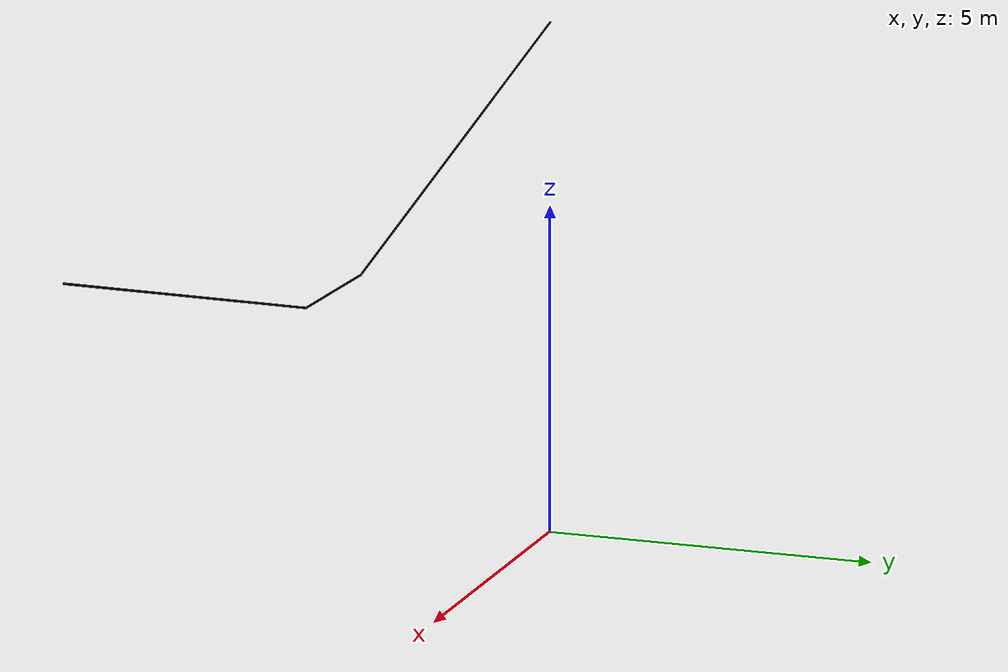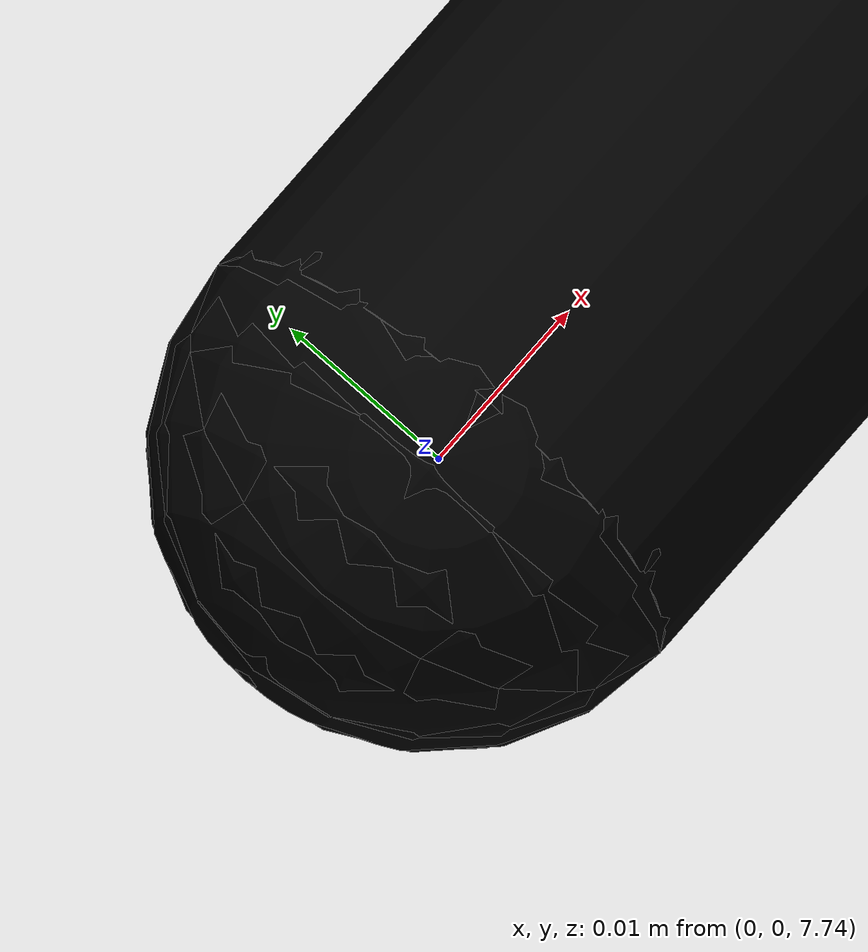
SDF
<?xml version="1.0" ?>
<sdf version="1.5">

<model name="cable">

  	<self_collide>true</self_collide>

  	<pose> 0 0 7.75 0 0 0</pose>

  	<!-- Enganche esférico inicial -->
  	<link name="link_0">
		<pose>0 0 0 0 0 0</pose>
		<collision name="sphere">
			<geometry>
				<sphere>
					<radius>0.015</radius>
				</sphere>
			</geometry>
		</collision>
		<visual name="sphere">
			<geometry>
				<sphere>
					<radius>0.015</radius>
				</sphere>
			</geometry>
			<material>
  <ambient>0 0 0 1</ambient>
  <emissive>0 0 0 1</emissive>
  <diffuse>0 0 0 1</diffuse>
  <specular>1 1 1 1</specular>
</material>

		</visual>
	</link>

	<joint name="world" type="fixed">
    	<child>link_0</child>
    	<parent>world</parent>
  	</joint>

	<link name="link_1">
	    <gravity>true</gravity>
	    <pose>0 0 -0.0 0 1.832595714594046 0</pose>
	    <inertial>
	      <pose>0 0 1 0 0 0</pose>
	      <mass>5</mass>
	      <inertia>
	        <ixx>1.6669479166666668</ixx>
	        <iyy>1.6669479166666668</iyy>
	        <izz>0.5</izz>
	      </inertia>
	    </inertial>

	    <collision name="cylinder">
	      	<pose>0 0 1 0 0 0</pose>
	      	<geometry>
		        <cylinder>
			        <length>2</length>
			        <radius>0.015</radius>
		        </cylinder>
	      	</geometry>
	      	<surface>
	        	<contact>
	          		<ode>
	            		<kp>1e5</kp>
	            		<kd>1</kd>
	            		<max_vel>0.1</max_vel>
	            		<min_depth>0.0015</min_depth>
	          		</ode>
	        	</contact>
	        	<friction>
	          		<ode>
			            <mu>1.0</mu>
	            		<mu2>1.0</mu2>
	          		</ode>
	        	</friction>
	      	</surface>
	    </collision>
	    <visual name="cylinder">
	      	<pose>0 0 1 0 0 0</pose>
	      	<geometry>
	        	<cylinder>
	          		<length>2</length>
	          		<radius>0.015</radius>
	        	</cylinder>
	      	</geometry>
	      	<material>
  <ambient>0 0 0 1</ambient>
  <emissive>0 0 0 1</emissive>
  <diffuse>0 0 0 1</diffuse>
  <specular>1 1 1 1</specular>
</material>

	    </visual>

	    <collision name="sphere">
			<geometry>
				<sphere>
					<radius>0.015</radius>
				</sphere>
			</geometry>
	    	<surface>
	        	<contact>
	        		<ode>
		            	<kp>1e5</kp>
		            	<kd>1</kd>
		            	<max_vel>0.1</max_vel>
		            	<min_depth>0.0015</min_depth>
	        		</ode>
	        	</contact>
	        	<friction>
	          		<ode>
	            		<mu>1.0</mu>
	            		<mu2>1.0</mu2>
	          		</ode>
	        	</friction>
	      	</surface>
	    </collision>
	    <visual name="sphere">
		    <geometry>
		        <sphere>
		          	<radius>0.015</radius>
		        </sphere>
		    </geometry>
		    <material>
  <ambient>0 0 0 1</ambient>
  <emissive>0 0 0 1</emissive>
  <diffuse>0 0 0 1</diffuse>
  <specular>1 1 1 1</specular>
</material>

	    </visual>
	</link>

	<joint name="joint_1" type="universal">
	    <child>link_1</child>
	    <parent>link_0</parent>
	    <axis>
	      	<xyz>0 1 0</xyz>
	      	<limit>
	        	<lower>-0.39269908169872414</lower>
	        	<upper>0.39269908169872414</upper>
	      	</limit>
	      	<dynamics>
	      		<friction>50</friction>
	      	</dynamics>
	    </axis>
	    <physics>
	      	<ode>
		        <cfm_damping>0</cfm_damping>
	      	</ode>
	    </physics>
	</joint>

	<link name="link_2">
	    <gravity>true</gravity>
	    <pose>1.9318516525781366 0 -0.5176380902050415 0 1.832595714594046 0</pose>
	    <inertial>
	      <pose>0 0 1 0 0 0</pose>
	      <mass>5</mass>
	      <inertia>
	        <ixx>1.6669479166666668</ixx>
	        <iyy>1.6669479166666668</iyy>
	        <izz>0.5</izz>
	      </inertia>
	    </inertial>

	    <collision name="cylinder">
	      	<pose>0 0 1 0 0 0</pose>
	      	<geometry>
		        <cylinder>
			        <length>2</length>
			        <radius>0.015</radius>
		        </cylinder>
	      	</geometry>
	      	<surface>
	        	<contact>
	          		<ode>
	            		<kp>1e5</kp>
	            		<kd>1</kd>
	            		<max_vel>0.1</max_vel>
	            		<min_depth>0.0015</min_depth>
	          		</ode>
	        	</contact>
	        	<friction>
	          		<ode>
			            <mu>1.0</mu>
	            		<mu2>1.0</mu2>
	          		</ode>
	        	</friction>
	      	</surface>
	    </collision>
	    <visual name="cylinder">
	      	<pose>0 0 1 0 0 0</pose>
	      	<geometry>
	        	<cylinder>
	          		<length>2</length>
	          		<radius>0.015</radius>
	        	</cylinder>
	      	</geometry>
	      	<material>
  <ambient>0 0 0 1</ambient>
  <emissive>0 0 0 1</emissive>
  <diffuse>0 0 0 1</diffuse>
  <specular>1 1 1 1</specular>
</material>

	    </visual>

	    <collision name="sphere">
			<geometry>
				<sphere>
					<radius>0.015</radius>
				</sphere>
			</geometry>
	    	<surface>
	        	<contact>
	        		<ode>
		            	<kp>1e5</kp>
		            	<kd>1</kd>
		            	<max_vel>0.1</max_vel>
		            	<min_depth>0.0015</min_depth>
	        		</ode>
	        	</contact>
	        	<friction>
	          		<ode>
	            		<mu>1.0</mu>
	            		<mu2>1.0</mu2>
	          		</ode>
	        	</friction>
	      	</surface>
	    </collision>
	    <visual name="sphere">
		    <geometry>
		        <sphere>
		          	<radius>0.015</radius>
		        </sphere>
		    </geometry>
		    <material>
  <ambient>0 0 0 1</ambient>
  <emissive>0 0 0 1</emissive>
  <diffuse>0 0 0 1</diffuse>
  <specular>1 1 1 1</specular>
</material>

	    </visual>
	</link>

	<joint name="joint_2" type="universal">
	    <child>link_2</child>
	    <parent>link_1</parent>
	    <axis>
	      	<xyz>0 1 0</xyz>
	      	<limit>
	        	<lower>-0.39269908169872414</lower>
	        	<upper>0.39269908169872414</upper>
	      	</limit>
	      	<dynamics>
	      		<friction>50</friction>
	      	</dynamics>
	    </axis>
	    <physics>
	      	<ode>
		        <cfm_damping>0</cfm_damping>
	      	</ode>
	    </physics>
	</joint>

	<link name="link_3">
	    <gravity>true</gravity>
	    <pose>3.8637033051562732 0 -1.035276180410083 0 1.832595714594046 0</pose>
	    <inertial>
	      <pose>0 0 1 0 0 0</pose>
	      <mass>5</mass>
	      <inertia>
	        <ixx>1.6669479166666668</ixx>
	        <iyy>1.6669479166666668</iyy>
	        <izz>0.5</izz>
	      </inertia>
	    </inertial>

	    <collision name="cylinder">
	      	<pose>0 0 1 0 0 0</pose>
	      	<geometry>
		        <cylinder>
			        <length>2</length>
			        <radius>0.015</radius>
		        </cylinder>
	      	</geometry>
	      	<surface>
	        	<contact>
	          		<ode>
	            		<kp>1e5</kp>
	            		<kd>1</kd>
	            		<max_vel>0.1</max_vel>
	            		<min_depth>0.0015</min_depth>
	          		</ode>
	        	</contact>
	        	<friction>
	          		<ode>
			            <mu>1.0</mu>
	            		<mu2>1.0</mu2>
	          		</ode>
	        	</friction>
	      	</surface>
	    </collision>
	    <visual name="cylinder">
	      	<pose>0 0 1 0 0 0</pose>
	      	<geometry>
	        	<cylinder>
	          		<length>2</length>
	          		<radius>0.015</radius>
	        	</cylinder>
	      	</geometry>
	      	<material>
  <ambient>0 0 0 1</ambient>
  <emissive>0 0 0 1</emissive>
  <diffuse>0 0 0 1</diffuse>
  <specular>1 1 1 1</specular>
</material>

	    </visual>

	    <collision name="sphere">
			<geometry>
				<sphere>
					<radius>0.015</radius>
				</sphere>
			</geometry>
	    	<surface>
	        	<contact>
	        		<ode>
		            	<kp>1e5</kp>
		            	<kd>1</kd>
		            	<max_vel>0.1</max_vel>
		            	<min_depth>0.0015</min_depth>
	        		</ode>
	        	</contact>
	        	<friction>
	          		<ode>
	            		<mu>1.0</mu>
	            		<mu2>1.0</mu2>
	          		</ode>
	        	</friction>
	      	</surface>
	    </collision>
	    <visual name="sphere">
		    <geometry>
		        <sphere>
		          	<radius>0.015</radius>
		        </sphere>
		    </geometry>
		    <material>
  <ambient>0 0 0 1</ambient>
  <emissive>0 0 0 1</emissive>
  <diffuse>0 0 0 1</diffuse>
  <specular>1 1 1 1</specular>
</material>

	    </visual>
	</link>

	<joint name="joint_3" type="universal">
	    <child>link_3</child>
	    <parent>link_2</parent>
	    <axis>
	      	<xyz>0 1 0</xyz>
	      	<limit>
	        	<lower>-0.39269908169872414</lower>
	        	<upper>0.39269908169872414</upper>
	      	</limit>
	      	<dynamics>
	      		<friction>50</friction>
	      	</dynamics>
	    </axis>
	    <physics>
	      	<ode>
		        <cfm_damping>0</cfm_damping>
	      	</ode>
	    </physics>
	</joint>

	<link name="link_4">
	    <gravity>true</gravity>
	    <pose>5.79555495773441 0 -1.5529142706151244 0 1.832595714594046 0</pose>
	    <inertial>
	      <pose>0 0 1 0 0 0</pose>
	      <mass>5</mass>
	      <inertia>
	        <ixx>1.6669479166666668</ixx>
	        <iyy>1.6669479166666668</iyy>
	        <izz>0.5</izz>
	      </inertia>
	    </inertial>

	    <collision name="cylinder">
	      	<pose>0 0 1 0 0 0</pose>
	      	<geometry>
		        <cylinder>
			        <length>2</length>
			        <radius>0.015</radius>
		        </cylinder>
	      	</geometry>
	      	<surface>
	        	<contact>
	          		<ode>
	            		<kp>1e5</kp>
	            		<kd>1</kd>
	            		<max_vel>0.1</max_vel>
	            		<min_depth>0.0015</min_depth>
	          		</ode>
	        	</contact>
	        	<friction>
	          		<ode>
			            <mu>1.0</mu>
	            		<mu2>1.0</mu2>
	          		</ode>
	        	</friction>
	      	</surface>
	    </collision>
	    <visual name="cylinder">
	      	<pose>0 0 1 0 0 0</pose>
	      	<geometry>
	        	<cylinder>
	          		<length>2</length>
	          		<radius>0.015</radius>
	        	</cylinder>
	      	</geometry>
	      	<material>
  <ambient>0 0 0 1</ambient>
  <emissive>0 0 0 1</emissive>
  <diffuse>0 0 0 1</diffuse>
  <specular>1 1 1 1</specular>
</material>

	    </visual>

	    <collision name="sphere">
			<geometry>
				<sphere>
					<radius>0.015</radius>
				</sphere>
			</geometry>
	    	<surface>
	        	<contact>
	        		<ode>
		            	<kp>1e5</kp>
		            	<kd>1</kd>
		            	<max_vel>0.1</max_vel>
		            	<min_depth>0.0015</min_depth>
	        		</ode>
	        	</contact>
	        	<friction>
	          		<ode>
	            		<mu>1.0</mu>
	            		<mu2>1.0</mu2>
	          		</ode>
	        	</friction>
	      	</surface>
	    </collision>
	    <visual name="sphere">
		    <geometry>
		        <sphere>
		          	<radius>0.015</radius>
		        </sphere>
		    </geometry>
		    <material>
  <ambient>0 0 0 1</ambient>
  <emissive>0 0 0 1</emissive>
  <diffuse>0 0 0 1</diffuse>
  <specular>1 1 1 1</specular>
</material>

	    </visual>
	</link>

	<joint name="joint_4" type="universal">
	    <child>link_4</child>
	    <parent>link_3</parent>
	    <axis>
	      	<xyz>0 1 0</xyz>
	      	<limit>
	        	<lower>-0.39269908169872414</lower>
	        	<upper>0.39269908169872414</upper>
	      	</limit>
	      	<dynamics>
	      		<friction>50</friction>
	      	</dynamics>
	    </axis>
	    <physics>
	      	<ode>
		        <cfm_damping>0</cfm_damping>
	      	</ode>
	    </physics>
	</joint>

	<link name="link_5">
	    <gravity>true</gravity>
	    <pose>7.7274066103125465 0 -2.070552360820166 0 1.5707963267948966 0</pose>
	    <inertial>
	      <pose>0 0 1 0 0 0</pose>
	      <mass>5</mass>
	      <inertia>
	        <ixx>1.6669479166666668</ixx>
	        <iyy>1.6669479166666668</iyy>
	        <izz>0.5</izz>
	      </inertia>
	    </inertial>

	    <collision name="cylinder">
	      	<pose>0 0 1 0 0 0</pose>
	      	<geometry>
		        <cylinder>
			        <length>2</length>
			        <radius>0.015</radius>
		        </cylinder>
	      	</geometry>
	      	<surface>
	        	<contact>
	          		<ode>
	            		<kp>1e5</kp>
	            		<kd>1</kd>
	            		<max_vel>0.1</max_vel>
	            		<min_depth>0.0015</min_depth>
	          		</ode>
	        	</contact>
	        	<friction>
	          		<ode>
			            <mu>1.0</mu>
	            		<mu2>1.0</mu2>
	          		</ode>
	        	</friction>
	      	</surface>
	    </collision>
	    <visual name="cylinder">
	      	<pose>0 0 1 0 0 0</pose>
	      	<geometry>
	        	<cylinder>
	          		<length>2</length>
	          		<radius>0.015</radius>
	        	</cylinder>
	      	</geometry>
	      	<material>
  <ambient>0 0 0 1</ambient>
  <emissive>0 0 0 1</emissive>
  <diffuse>0 0 0 1</diffuse>
  <specular>1 1 1 1</specular>
</material>

	    </visual>

	    <collision name="sphere">
			<geometry>
				<sphere>
					<radius>0.015</radius>
				</sphere>
			</geometry>
	    	<surface>
	        	<contact>
	        		<ode>
		            	<kp>1e5</kp>
		            	<kd>1</kd>
		            	<max_vel>0.1</max_vel>
		            	<min_depth>0.0015</min_depth>
	        		</ode>
	        	</contact>
	        	<friction>
	          		<ode>
	            		<mu>1.0</mu>
	            		<mu2>1.0</mu2>
	          		</ode>
	        	</friction>
	      	</surface>
	    </collision>
	    <visual name="sphere">
		    <geometry>
		        <sphere>
		          	<radius>0.015</radius>
		        </sphere>
		    </geometry>
		    <material>
  <ambient>0 0 0 1</ambient>
  <emissive>0 0 0 1</emissive>
  <diffuse>0 0 0 1</diffuse>
  <specular>1 1 1 1</specular>
</material>

	    </visual>
	</link>

	<joint name="joint_5" type="universal">
	    <child>link_5</child>
	    <parent>link_4</parent>
	    <axis>
	      	<xyz>0 1 0</xyz>
	      	<limit>
	        	<lower>-0.39269908169872414</lower>
	        	<upper>0.39269908169872414</upper>
	      	</limit>
	      	<dynamics>
	      		<friction>50</friction>
	      	</dynamics>
	    </axis>
	    <physics>
	      	<ode>
		        <cfm_damping>0</cfm_damping>
	      	</ode>
	    </physics>
	</joint>

	<link name="link_6">
	    <gravity>true</gravity>
	    <pose>9.727406610312546 0 -2.070552360820166 0 1.3089969389957472 0</pose>
	    <inertial>
	      <pose>0 0 1 0 0 0</pose>
	      <mass>5</mass>
	      <inertia>
	        <ixx>1.6669479166666668</ixx>
	        <iyy>1.6669479166666668</iyy>
	        <izz>0.5</izz>
	      </inertia>
	    </inertial>

	    <collision name="cylinder">
	      	<pose>0 0 1 0 0 0</pose>
	      	<geometry>
		        <cylinder>
			        <length>2</length>
			        <radius>0.015</radius>
		        </cylinder>
	      	</geometry>
	      	<surface>
	        	<contact>
	          		<ode>
	            		<kp>1e5</kp>
	            		<kd>1</kd>
	            		<max_vel>0.1</max_vel>
	            		<min_depth>0.0015</min_depth>
	          		</ode>
	        	</contact>
	        	<friction>
	          		<ode>
			            <mu>1.0</mu>
	            		<mu2>1.0</mu2>
	          		</ode>
	        	</friction>
	      	</surface>
	    </collision>
	    <visual name="cylinder">
	      	<pose>0 0 1 0 0 0</pose>
	      	<geometry>
	        	<cylinder>
	          		<length>2</length>
	          		<radius>0.015</radius>
	        	</cylinder>
	      	</geometry>
	      	<material>
  <ambient>0 0 0 1</ambient>
  <emissive>0 0 0 1</emissive>
  <diffuse>0 0 0 1</diffuse>
  <specular>1 1 1 1</specular>
</material>

	    </visual>

	    <collision name="sphere">
			<geometry>
				<sphere>
					<radius>0.015</radius>
				</sphere>
			</geometry>
	    	<surface>
	        	<contact>
	        		<ode>
		            	<kp>1e5</kp>
		            	<kd>1</kd>
		            	<max_vel>0.1</max_vel>
		            	<min_depth>0.0015</min_depth>
	        		</ode>
	        	</contact>
	        	<friction>
	          		<ode>
	            		<mu>1.0</mu>
	            		<mu2>1.0</mu2>
	          		</ode>
	        	</friction>
	      	</surface>
	    </collision>
	    <visual name="sphere">
		    <geometry>
		        <sphere>
		          	<radius>0.015</radius>
		        </sphere>
		    </geometry>
		    <material>
  <ambient>0 0 0 1</ambient>
  <emissive>0 0 0 1</emissive>
  <diffuse>0 0 0 1</diffuse>
  <specular>1 1 1 1</specular>
</material>

	    </visual>
	</link>

	<joint name="joint_6" type="universal">
	    <child>link_6</child>
	    <parent>link_5</parent>
	    <axis>
	      	<xyz>0 1 0</xyz>
	      	<limit>
	        	<lower>-0.39269908169872414</lower>
	        	<upper>0.39269908169872414</upper>
	      	</limit>
	      	<dynamics>
	      		<friction>50</friction>
	      	</dynamics>
	    </axis>
	    <physics>
	      	<ode>
		        <cfm_damping>0</cfm_damping>
	      	</ode>
	    </physics>
	</joint>

	<link name="link_7">
	    <gravity>true</gravity>
	    <pose>11.659258262890683 0 -1.5529142706151244 0 1.3089969389957472 0</pose>
	    <inertial>
	      <pose>0 0 1 0 0 0</pose>
	      <mass>5</mass>
	      <inertia>
	        <ixx>1.6669479166666668</ixx>
	        <iyy>1.6669479166666668</iyy>
	        <izz>0.5</izz>
	      </inertia>
	    </inertial>

	    <collision name="cylinder">
	      	<pose>0 0 1 0 0 0</pose>
	      	<geometry>
		        <cylinder>
			        <length>2</length>
			        <radius>0.015</radius>
		        </cylinder>
	      	</geometry>
	      	<surface>
	        	<contact>
	          		<ode>
	            		<kp>1e5</kp>
	            		<kd>1</kd>
	            		<max_vel>0.1</max_vel>
	            		<min_depth>0.0015</min_depth>
	          		</ode>
	        	</contact>
	        	<friction>
	          		<ode>
			            <mu>1.0</mu>
	            		<mu2>1.0</mu2>
	          		</ode>
	        	</friction>
	      	</surface>
	    </collision>
	    <visual name="cylinder">
	      	<pose>0 0 1 0 0 0</pose>
	      	<geometry>
	        	<cylinder>
	          		<length>2</length>
	          		<radius>0.015</radius>
	        	</cylinder>
	      	</geometry>
	      	<material>
  <ambient>0 0 0 1</ambient>
  <emissive>0 0 0 1</emissive>
  <diffuse>0 0 0 1</diffuse>
  <specular>1 1 1 1</specular>
</material>

	    </visual>

	    <collision name="sphere">
			<geometry>
				<sphere>
					<radius>0.015</radius>
				</sphere>
			</geometry>
	    	<surface>
	        	<contact>
	        		<ode>
		            	<kp>1e5</kp>
		            	<kd>1</kd>
		            	<max_vel>0.1</max_vel>
		            	<min_depth>0.0015</min_depth>
	        		</ode>
	        	</contact>
	        	<friction>
	          		<ode>
	            		<mu>1.0</mu>
	            		<mu2>1.0</mu2>
	          		</ode>
	        	</friction>
	      	</surface>
	    </collision>
	    <visual name="sphere">
		    <geometry>
		        <sphere>
		          	<radius>0.015</radius>
		        </sphere>
		    </geometry>
		    <material>
  <ambient>0 0 0 1</ambient>
  <emissive>0 0 0 1</emissive>
  <diffuse>0 0 0 1</diffuse>
  <specular>1 1 1 1</specular>
</material>

	    </visual>
	</link>

	<joint name="joint_7" type="universal">
	    <child>link_7</child>
	    <parent>link_6</parent>
	    <axis>
	      	<xyz>0 1 0</xyz>
	      	<limit>
	        	<lower>-0.39269908169872414</lower>
	        	<upper>0.39269908169872414</upper>
	      	</limit>
	      	<dynamics>
	      		<friction>50</friction>
	      	</dynamics>
	    </axis>
	    <physics>
	      	<ode>
		        <cfm_damping>0</cfm_damping>
	      	</ode>
	    </physics>
	</joint>

	<link name="link_8">
	    <gravity>true</gravity>
	    <pose>13.59110991546882 0 -1.035276180410083 0 1.3089969389957472 0</pose>
	    <inertial>
	      <pose>0 0 1 0 0 0</pose>
	      <mass>5</mass>
	      <inertia>
	        <ixx>1.6669479166666668</ixx>
	        <iyy>1.6669479166666668</iyy>
	        <izz>0.5</izz>
	      </inertia>
	    </inertial>

	    <collision name="cylinder">
	      	<pose>0 0 1 0 0 0</pose>
	      	<geometry>
		        <cylinder>
			        <length>2</length>
			        <radius>0.015</radius>
		        </cylinder>
	      	</geometry>
	      	<surface>
	        	<contact>
	          		<ode>
	            		<kp>1e5</kp>
	            		<kd>1</kd>
	            		<max_vel>0.1</max_vel>
	            		<min_depth>0.0015</min_depth>
	          		</ode>
	        	</contact>
	        	<friction>
	          		<ode>
			            <mu>1.0</mu>
	            		<mu2>1.0</mu2>
	          		</ode>
	        	</friction>
	      	</surface>
	    </collision>
	    <visual name="cylinder">
	      	<pose>0 0 1 0 0 0</pose>
	      	<geometry>
	        	<cylinder>
	          		<length>2</length>
	          		<radius>0.015</radius>
	        	</cylinder>
	      	</geometry>
	      	<material>
  <ambient>0 0 0 1</ambient>
  <emissive>0 0 0 1</emissive>
  <diffuse>0 0 0 1</diffuse>
  <specular>1 1 1 1</specular>
</material>

	    </visual>

	    <collision name="sphere">
			<geometry>
				<sphere>
					<radius>0.015</radius>
				</sphere>
			</geometry>
	    	<surface>
	        	<contact>
	        		<ode>
		            	<kp>1e5</kp>
		            	<kd>1</kd>
		            	<max_vel>0.1</max_vel>
		            	<min_depth>0.0015</min_depth>
	        		</ode>
	        	</contact>
	        	<friction>
	          		<ode>
	            		<mu>1.0</mu>
	            		<mu2>1.0</mu2>
	          		</ode>
	        	</friction>
	      	</surface>
	    </collision>
	    <visual name="sphere">
		    <geometry>
		        <sphere>
		          	<radius>0.015</radius>
		        </sphere>
		    </geometry>
		    <material>
  <ambient>0 0 0 1</ambient>
  <emissive>0 0 0 1</emissive>
  <diffuse>0 0 0 1</diffuse>
  <specular>1 1 1 1</specular>
</material>

	    </visual>
	</link>

	<joint name="joint_8" type="universal">
	    <child>link_8</child>
	    <parent>link_7</parent>
	    <axis>
	      	<xyz>0 1 0</xyz>
	      	<limit>
	        	<lower>-0.39269908169872414</lower>
	        	<upper>0.39269908169872414</upper>
	      	</limit>
	      	<dynamics>
	      		<friction>50</friction>
	      	</dynamics>
	    </axis>
	    <physics>
	      	<ode>
		        <cfm_damping>0</cfm_damping>
	      	</ode>
	    </physics>
	</joint>

	<link name="link_9">
	    <gravity>true</gravity>
	    <pose>15.522961568046957 0 -0.5176380902050415 0 1.3089969389957472 0</pose>
	    <inertial>
	      <pose>0 0 1 0 0 0</pose>
	      <mass>5</mass>
	      <inertia>
	        <ixx>1.6669479166666668</ixx>
	        <iyy>1.6669479166666668</iyy>
	        <izz>0.5</izz>
	      </inertia>
	    </inertial>

	    <collision name="cylinder">
	      	<pose>0 0 1 0 0 0</pose>
	      	<geometry>
		        <cylinder>
			        <length>2</length>
			        <radius>0.015</radius>
		        </cylinder>
	      	</geometry>
	      	<surface>
	        	<contact>
	          		<ode>
	            		<kp>1e5</kp>
	            		<kd>1</kd>
	            		<max_vel>0.1</max_vel>
	            		<min_depth>0.0015</min_depth>
	          		</ode>
	        	</contact>
	        	<friction>
	          		<ode>
			            <mu>1.0</mu>
	            		<mu2>1.0</mu2>
	          		</ode>
	        	</friction>
	      	</surface>
	    </collision>
	    <visual name="cylinder">
	      	<pose>0 0 1 0 0 0</pose>
	      	<geometry>
	        	<cylinder>
	          		<length>2</length>
	          		<radius>0.015</radius>
	        	</cylinder>
	      	</geometry>
	      	<material>
  <ambient>0 0 0 1</ambient>
  <emissive>0 0 0 1</emissive>
  <diffuse>0 0 0 1</diffuse>
  <specular>1 1 1 1</specular>
</material>

	    </visual>

	    <collision name="sphere">
			<geometry>
				<sphere>
					<radius>0.015</radius>
				</sphere>
			</geometry>
	    	<surface>
	        	<contact>
	        		<ode>
		            	<kp>1e5</kp>
		            	<kd>1</kd>
		            	<max_vel>0.1</max_vel>
		            	<min_depth>0.0015</min_depth>
	        		</ode>
	        	</contact>
	        	<friction>
	          		<ode>
	            		<mu>1.0</mu>
	            		<mu2>1.0</mu2>
	          		</ode>
	        	</friction>
	      	</surface>
	    </collision>
	    <visual name="sphere">
		    <geometry>
		        <sphere>
		          	<radius>0.015</radius>
		        </sphere>
		    </geometry>
		    <material>
  <ambient>0 0 0 1</ambient>
  <emissive>0 0 0 1</emissive>
  <diffuse>0 0 0 1</diffuse>
  <specular>1 1 1 1</specular>
</material>

	    </visual>
	</link>

	<joint name="joint_9" type="universal">
	    <child>link_9</child>
	    <parent>link_8</parent>
	    <axis>
	      	<xyz>0 1 0</xyz>
	      	<limit>
	        	<lower>-0.39269908169872414</lower>
	        	<upper>0.39269908169872414</upper>
	      	</limit>
	      	<dynamics>
	      		<friction>50</friction>
	      	</dynamics>
	    </axis>
	    <physics>
	      	<ode>
		        <cfm_damping>0</cfm_damping>
	      	</ode>
	    </physics>
	</joint>

	<!-- Enganche esférico final -->
  	<link name="link_end">
		<pose>17.454813220625095 0 0 0 0 0</pose>
		<collision name="sphere">
			<geometry>
				<sphere>
					<radius>0.015</radius>
				</sphere>
			</geometry>
		</collision>
		<visual name="sphere">
			<geometry>
				<sphere>
					<radius>0.015</radius>
				</sphere>
			</geometry>
			<material>
  <ambient>0 0 0 1</ambient>
  <emissive>0 0 0 1</emissive>
  <diffuse>0 0 0 1</diffuse>
  <specular>1 1 1 1</specular>
</material>

		</visual>
	</link>

	<joint name="joint_10" type="universal">
	    <child>link_9</child>
	    <parent>link_end</parent>
	    <pose>0 0 2 0 0 0</pose>
	    <axis>
	      	<xyz>0 1 0</xyz>
	      	<limit>
	        	<lower>-0.39269908169872414</lower>
	        	<upper>0.39269908169872414</upper>
	      	</limit>
	    </axis>
	    <physics>
	      	<ode>
		        <cfm_damping>0</cfm_damping>
	      	</ode>
	    </physics>
	</joint>

  	<joint name="world_2" type="fixed">
	    <child>link_end</child>
    	<parent>world</parent>
	</joint>

</model>
</sdf>

<!-- Longitud final del cable: 17.454813220625095 -->
